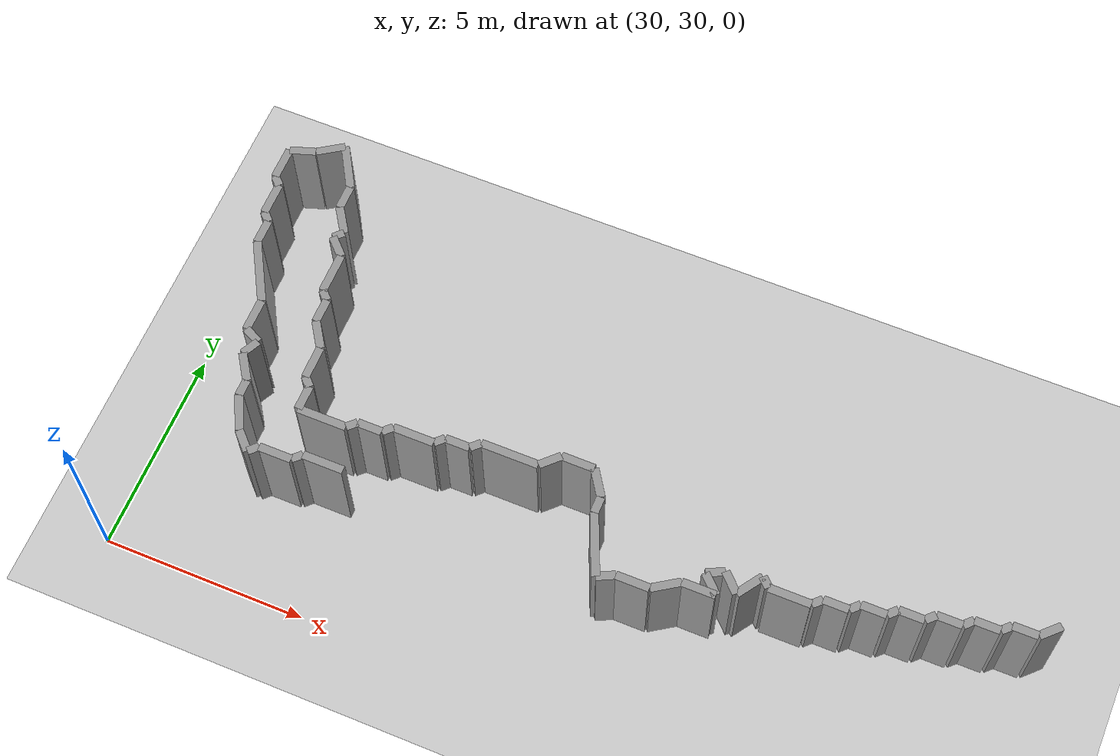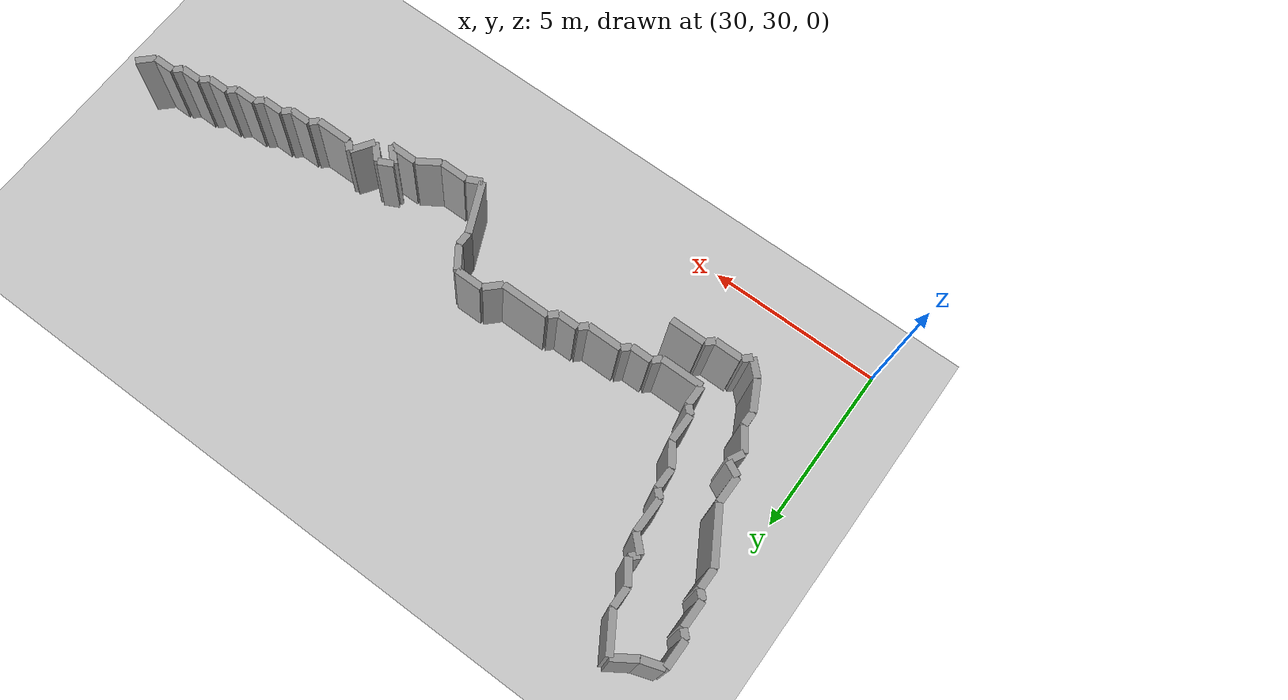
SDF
<sdf version="1.4">
 <world name="1_wall">
  <model name="ground_plane">
   <static>1</static>
   <link name="link">
    <collision name="collision">
     <geometry><plane><normal>0 0 1</normal><size>1000 1000</size></plane></geometry>
     <surface><friction><ode><mu>100</mu><mu2>50</mu2></ode></friction></surface>
    </collision>
    <visual name="visual">
     <cast_shadows>0</cast_shadows>
     <geometry><plane><normal>0 0 1</normal><size>10000 10000</size></plane></geometry>
     <material>
      <script><uri>file://media/materials/scripts/gazebo.material</uri><name>Gazebo/Grey</name></script>
     </material>
    </visual>
    <velocity_decay><linear>0</linear><angular>0</angular></velocity_decay>
   </link>
  </model>
  <model name="Wall_277">
   <static>1</static>
   <link name="Wall_277">
    <collision name="Wall_Collision_277">
     <geometry><box><size>0.565685424949 0.2 2.5</size></box></geometry>
     <pose>0 0 1.25 0 -0 0</pose>
    </collision>
    <visual name="Wall_Visual_277">
     <pose>0 0 1.25 0 -0 0</pose>
     <geometry><box><size>0.565685424949 0.2 2.5</size></box></geometry>
     <material>
      <script><uri>file://media/materials/scripts/gazebo.material</uri><name>Gazebo/Grey</name></script>
     </material>
    </visual>
    <velocity_decay><linear>0</linear><angular>0</angular></velocity_decay>
    <pose>50.8 35.2 0 0 0 -2.35619449019</pose>
   </link>
  </model>
  <model name="Wall_278">
   <static>1</static>
   <link name="Wall_278">
    <collision name="Wall_Collision_278">
     <geometry><box><size>0.6 0.2 2.5</size></box></geometry>
     <pose>0 0 1.25 0 -0 0</pose>
    </collision>
    <visual name="Wall_Visual_278">
     <pose>0 0 1.25 0 -0 0</pose>
     <geometry><box><size>0.6 0.2 2.5</size></box></geometry>
     <material>
      <script><uri>file://media/materials/scripts/gazebo.material</uri><name>Gazebo/Grey</name></script>
     </material>
    </visual>
    <velocity_decay><linear>0</linear><angular>0</angular></velocity_decay>
    <pose>50.3 35.0 0 0 0 3.14159265359</pose>
   </link>
  </model>
  <model name="Wall_279">
   <static>1</static>
   <link name="Wall_279">
    <collision name="Wall_Collision_279">
     <geometry><box><size>0.282842712475 0.2 2.5</size></box></geometry>
     <pose>0 0 1.25 0 -0 0</pose>
    </collision>
    <visual name="Wall_Visual_279">
     <pose>0 0 1.25 0 -0 0</pose>
     <geometry><box><size>0.282842712475 0.2 2.5</size></box></geometry>
     <material>
      <script><uri>file://media/materials/scripts/gazebo.material</uri><name>Gazebo/Grey</name></script>
     </material>
    </visual>
    <velocity_decay><linear>0</linear><angular>0</angular></velocity_decay>
    <pose>49.9 34.9 0 0 0 -2.35619449019</pose>
   </link>
  </model>
  <model name="Wall_280">
   <static>1</static>
   <link name="Wall_280">
    <collision name="Wall_Collision_280">
     <geometry><box><size>0.6 0.2 2.5</size></box></geometry>
     <pose>0 0 1.25 0 -0 0</pose>
    </collision>
    <visual name="Wall_Visual_280">
     <pose>0 0 1.25 0 -0 0</pose>
     <geometry><box><size>0.6 0.2 2.5</size></box></geometry>
     <material>
      <script><uri>file://media/materials/scripts/gazebo.material</uri><name>Gazebo/Grey</name></script>
     </material>
    </visual>
    <velocity_decay><linear>0</linear><angular>0</angular></velocity_decay>
    <pose>49.5 34.8 0 0 0 3.14159265359</pose>
   </link>
  </model>
  <model name="Wall_281">
   <static>1</static>
   <link name="Wall_281">
    <collision name="Wall_Collision_281">
     <geometry><box><size>0.282842712475 0.2 2.5</size></box></geometry>
     <pose>0 0 1.25 0 -0 0</pose>
    </collision>
    <visual name="Wall_Visual_281">
     <pose>0 0 1.25 0 -0 0</pose>
     <geometry><box><size>0.282842712475 0.2 2.5</size></box></geometry>
     <material>
      <script><uri>file://media/materials/scripts/gazebo.material</uri><name>Gazebo/Grey</name></script>
     </material>
    </visual>
    <velocity_decay><linear>0</linear><angular>0</angular></velocity_decay>
    <pose>49.1 34.7 0 0 0 -2.35619449019</pose>
   </link>
  </model>
  <model name="Wall_282">
   <static>1</static>
   <link name="Wall_282">
    <collision name="Wall_Collision_282">
     <geometry><box><size>0.6 0.2 2.5</size></box></geometry>
     <pose>0 0 1.25 0 -0 0</pose>
    </collision>
    <visual name="Wall_Visual_282">
     <pose>0 0 1.25 0 -0 0</pose>
     <geometry><box><size>0.6 0.2 2.5</size></box></geometry>
     <material>
      <script><uri>file://media/materials/scripts/gazebo.material</uri><name>Gazebo/Grey</name></script>
     </material>
    </visual>
    <velocity_decay><linear>0</linear><angular>0</angular></velocity_decay>
    <pose>48.7 34.6 0 0 0 3.14159265359</pose>
   </link>
  </model>
  <model name="Wall_283">
   <static>1</static>
   <link name="Wall_283">
    <collision name="Wall_Collision_283">
     <geometry><box><size>0.282842712475 0.2 2.5</size></box></geometry>
     <pose>0 0 1.25 0 -0 0</pose>
    </collision>
    <visual name="Wall_Visual_283">
     <pose>0 0 1.25 0 -0 0</pose>
     <geometry><box><size>0.282842712475 0.2 2.5</size></box></geometry>
     <material>
      <script><uri>file://media/materials/scripts/gazebo.material</uri><name>Gazebo/Grey</name></script>
     </material>
    </visual>
    <velocity_decay><linear>0</linear><angular>0</angular></velocity_decay>
    <pose>48.3 34.5 0 0 0 -2.35619449019</pose>
   </link>
  </model>
  <model name="Wall_284">
   <static>1</static>
   <link name="Wall_284">
    <collision name="Wall_Collision_284">
     <geometry><box><size>0.6 0.2 2.5</size></box></geometry>
     <pose>0 0 1.25 0 -0 0</pose>
    </collision>
    <visual name="Wall_Visual_284">
     <pose>0 0 1.25 0 -0 0</pose>
     <geometry><box><size>0.6 0.2 2.5</size></box></geometry>
     <material>
      <script><uri>file://media/materials/scripts/gazebo.material</uri><name>Gazebo/Grey</name></script>
     </material>
    </visual>
    <velocity_decay><linear>0</linear><angular>0</angular></velocity_decay>
    <pose>47.9 34.4 0 0 0 3.14159265359</pose>
   </link>
  </model>
  <model name="Wall_285">
   <static>1</static>
   <link name="Wall_285">
    <collision name="Wall_Collision_285">
     <geometry><box><size>0.282842712475 0.2 2.5</size></box></geometry>
     <pose>0 0 1.25 0 -0 0</pose>
    </collision>
    <visual name="Wall_Visual_285">
     <pose>0 0 1.25 0 -0 0</pose>
     <geometry><box><size>0.282842712475 0.2 2.5</size></box></geometry>
     <material>
      <script><uri>file://media/materials/scripts/gazebo.material</uri><name>Gazebo/Grey</name></script>
     </material>
    </visual>
    <velocity_decay><linear>0</linear><angular>0</angular></velocity_decay>
    <pose>47.5 34.3 0 0 0 -2.35619449019</pose>
   </link>
  </model>
  <model name="Wall_286">
   <static>1</static>
   <link name="Wall_286">
    <collision name="Wall_Collision_286">
     <geometry><box><size>0.6 0.2 2.5</size></box></geometry>
     <pose>0 0 1.25 0 -0 0</pose>
    </collision>
    <visual name="Wall_Visual_286">
     <pose>0 0 1.25 0 -0 0</pose>
     <geometry><box><size>0.6 0.2 2.5</size></box></geometry>
     <material>
      <script><uri>file://media/materials/scripts/gazebo.material</uri><name>Gazebo/Grey</name></script>
     </material>
    </visual>
    <velocity_decay><linear>0</linear><angular>0</angular></velocity_decay>
    <pose>47.1 34.2 0 0 0 3.14159265359</pose>
   </link>
  </model>
  <model name="Wall_287">
   <static>1</static>
   <link name="Wall_287">
    <collision name="Wall_Collision_287">
     <geometry><box><size>0.282842712475 0.2 2.5</size></box></geometry>
     <pose>0 0 1.25 0 -0 0</pose>
    </collision>
    <visual name="Wall_Visual_287">
     <pose>0 0 1.25 0 -0 0</pose>
     <geometry><box><size>0.282842712475 0.2 2.5</size></box></geometry>
     <material>
      <script><uri>file://media/materials/scripts/gazebo.material</uri><name>Gazebo/Grey</name></script>
     </material>
    </visual>
    <velocity_decay><linear>0</linear><angular>0</angular></velocity_decay>
    <pose>46.7 34.1 0 0 0 -2.35619449019</pose>
   </link>
  </model>
  <model name="Wall_288">
   <static>1</static>
   <link name="Wall_288">
    <collision name="Wall_Collision_288">
     <geometry><box><size>0.6 0.2 2.5</size></box></geometry>
     <pose>0 0 1.25 0 -0 0</pose>
    </collision>
    <visual name="Wall_Visual_288">
     <pose>0 0 1.25 0 -0 0</pose>
     <geometry><box><size>0.6 0.2 2.5</size></box></geometry>
     <material>
      <script><uri>file://media/materials/scripts/gazebo.material</uri><name>Gazebo/Grey</name></script>
     </material>
    </visual>
    <velocity_decay><linear>0</linear><angular>0</angular></velocity_decay>
    <pose>46.3 34.0 0 0 0 3.14159265359</pose>
   </link>
  </model>
  <model name="Wall_289">
   <static>1</static>
   <link name="Wall_289">
    <collision name="Wall_Collision_289">
     <geometry><box><size>0.282842712475 0.2 2.5</size></box></geometry>
     <pose>0 0 1.25 0 -0 0</pose>
    </collision>
    <visual name="Wall_Visual_289">
     <pose>0 0 1.25 0 -0 0</pose>
     <geometry><box><size>0.282842712475 0.2 2.5</size></box></geometry>
     <material>
      <script><uri>file://media/materials/scripts/gazebo.material</uri><name>Gazebo/Grey</name></script>
     </material>
    </visual>
    <velocity_decay><linear>0</linear><angular>0</angular></velocity_decay>
    <pose>45.9 33.9 0 0 0 -2.35619449019</pose>
   </link>
  </model>
  <model name="Wall_290">
   <static>1</static>
   <link name="Wall_290">
    <collision name="Wall_Collision_290">
     <geometry><box><size>1.0 0.2 2.5</size></box></geometry>
     <pose>0 0 1.25 0 -0 0</pose>
    </collision>
    <visual name="Wall_Visual_290">
     <pose>0 0 1.25 0 -0 0</pose>
     <geometry><box><size>1.0 0.2 2.5</size></box></geometry>
     <material>
      <script><uri>file://media/materials/scripts/gazebo.material</uri><name>Gazebo/Grey</name></script>
     </material>
    </visual>
    <velocity_decay><linear>0</linear><angular>0</angular></velocity_decay>
    <pose>45.3 33.8 0 0 0 3.14159265359</pose>
   </link>
  </model>
  <model name="Wall_291">
   <static>1</static>
   <link name="Wall_291">
    <collision name="Wall_Collision_291">
     <geometry><box><size>0.282842712475 0.2 2.5</size></box></geometry>
     <pose>0 0 1.25 0 -0 0</pose>
    </collision>
    <visual name="Wall_Visual_291">
     <pose>0 0 1.25 0 -0 0</pose>
     <geometry><box><size>0.282842712475 0.2 2.5</size></box></geometry>
     <material>
      <script><uri>file://media/materials/scripts/gazebo.material</uri><name>Gazebo/Grey</name></script>
     </material>
    </visual>
    <velocity_decay><linear>0</linear><angular>0</angular></velocity_decay>
    <pose>44.7 33.9 0 0 0 2.35619449019</pose>
   </link>
  </model>
  <model name="Wall_292">
   <static>1</static>
   <link name="Wall_292">
    <collision name="Wall_Collision_292">
     <geometry><box><size>0.721110255093 0.2 2.5</size></box></geometry>
     <pose>0 0 1.25 0 -0 0</pose>
    </collision>
    <visual name="Wall_Visual_292">
     <pose>0 0 1.25 0 -0 0</pose>
     <geometry><box><size>0.721110255093 0.2 2.5</size></box></geometry>
     <material>
      <script><uri>file://media/materials/scripts/gazebo.material</uri><name>Gazebo/Grey</name></script>
     </material>
    </visual>
    <velocity_decay><linear>0</linear><angular>0</angular></velocity_decay>
    <pose>44.4 33.7 0 0 0 -2.15879893034</pose>
   </link>
  </model>
  <model name="Wall_293">
   <static>1</static>
   <link name="Wall_293">
    <collision name="Wall_Collision_293">
     <geometry><box><size>0.565685424949 0.2 2.5</size></box></geometry>
     <pose>0 0 1.25 0 -0 0</pose>
    </collision>
    <visual name="Wall_Visual_293">
     <pose>0 0 1.25 0 -0 0</pose>
     <geometry><box><size>0.565685424949 0.2 2.5</size></box></geometry>
     <material>
      <script><uri>file://media/materials/scripts/gazebo.material</uri><name>Gazebo/Grey</name></script>
     </material>
    </visual>
    <velocity_decay><linear>0</linear><angular>0</angular></velocity_decay>
    <pose>44.0 33.6 0 0 0 2.35619449019</pose>
   </link>
  </model>
  <model name="Wall_294">
   <static>1</static>
   <link name="Wall_294">
    <collision name="Wall_Collision_294">
     <geometry><box><size>0.4472135955 0.2 2.5</size></box></geometry>
     <pose>0 0 1.25 0 -0 0</pose>
    </collision>
    <visual name="Wall_Visual_294">
     <pose>0 0 1.25 0 -0 0</pose>
     <geometry><box><size>0.4472135955 0.2 2.5</size></box></geometry>
     <material>
      <script><uri>file://media/materials/scripts/gazebo.material</uri><name>Gazebo/Grey</name></script>
     </material>
    </visual>
    <velocity_decay><linear>0</linear><angular>0</angular></velocity_decay>
    <pose>43.6 33.7 0 0 0 -2.67794504459</pose>
   </link>
  </model>
  <model name="Wall_295">
   <static>1</static>
   <link name="Wall_295">
    <collision name="Wall_Collision_295">
     <geometry><box><size>0.565685424949 0.2 2.5</size></box></geometry>
     <pose>0 0 1.25 0 -0 0</pose>
    </collision>
    <visual name="Wall_Visual_295">
     <pose>0 0 1.25 0 -0 0</pose>
     <geometry><box><size>0.565685424949 0.2 2.5</size></box></geometry>
     <material>
      <script><uri>file://media/materials/scripts/gazebo.material</uri><name>Gazebo/Grey</name></script>
     </material>
    </visual>
    <velocity_decay><linear>0</linear><angular>0</angular></velocity_decay>
    <pose>43.6 33.4 0 0 0 -0.785398163397</pose>
   </link>
  </model>
  <model name="Wall_296">
   <static>1</static>
   <link name="Wall_296">
    <collision name="Wall_Collision_296">
     <geometry><box><size>0.8 0.2 2.5</size></box></geometry>
     <pose>0 0 1.25 0 -0 0</pose>
    </collision>
    <visual name="Wall_Visual_296">
     <pose>0 0 1.25 0 -0 0</pose>
     <geometry><box><size>0.8 0.2 2.5</size></box></geometry>
     <material>
      <script><uri>file://media/materials/scripts/gazebo.material</uri><name>Gazebo/Grey</name></script>
     </material>
    </visual>
    <velocity_decay><linear>0</linear><angular>0</angular></velocity_decay>
    <pose>43.4 33.2 0 0 0 3.14159265359</pose>
   </link>
  </model>
  <model name="Wall_297">
   <static>1</static>
   <link name="Wall_297">
    <collision name="Wall_Collision_297">
     <geometry><box><size>0.721110255093 0.2 2.5</size></box></geometry>
     <pose>0 0 1.25 0 -0 0</pose>
    </collision>
    <visual name="Wall_Visual_297">
     <pose>0 0 1.25 0 -0 0</pose>
     <geometry><box><size>0.721110255093 0.2 2.5</size></box></geometry>
     <material>
      <script><uri>file://media/materials/scripts/gazebo.material</uri><name>Gazebo/Grey</name></script>
     </material>
    </visual>
    <velocity_decay><linear>0</linear><angular>0</angular></velocity_decay>
    <pose>42.7 33.0 0 0 0 -2.55359005004</pose>
   </link>
  </model>
  <model name="Wall_298">
   <static>1</static>
   <link name="Wall_298">
    <collision name="Wall_Collision_298">
     <geometry><box><size>0.8 0.2 2.5</size></box></geometry>
     <pose>0 0 1.25 0 -0 0</pose>
    </collision>
    <visual name="Wall_Visual_298">
     <pose>0 0 1.25 0 -0 0</pose>
     <geometry><box><size>0.8 0.2 2.5</size></box></geometry>
     <material>
      <script><uri>file://media/materials/scripts/gazebo.material</uri><name>Gazebo/Grey</name></script>
     </material>
    </visual>
    <velocity_decay><linear>0</linear><angular>0</angular></velocity_decay>
    <pose>42.0 32.8 0 0 0 3.14159265359</pose>
   </link>
  </model>
  <model name="Wall_299">
   <static>1</static>
   <link name="Wall_299">
    <collision name="Wall_Collision_299">
     <geometry><box><size>0.4472135955 0.2 2.5</size></box></geometry>
     <pose>0 0 1.25 0 -0 0</pose>
    </collision>
    <visual name="Wall_Visual_299">
     <pose>0 0 1.25 0 -0 0</pose>
     <geometry><box><size>0.4472135955 0.2 2.5</size></box></geometry>
     <material>
      <script><uri>file://media/materials/scripts/gazebo.material</uri><name>Gazebo/Grey</name></script>
     </material>
    </visual>
    <velocity_decay><linear>0</linear><angular>0</angular></velocity_decay>
    <pose>41.4 32.7 0 0 0 -2.67794504459</pose>
   </link>
  </model>
  <model name="Wall_300">
   <static>1</static>
   <link name="Wall_300">
    <collision name="Wall_Collision_300">
     <geometry><box><size>1.52315462117 0.2 2.5</size></box></geometry>
     <pose>0 0 1.25 0 -0 0</pose>
    </collision>
    <visual name="Wall_Visual_300">
     <pose>0 0 1.25 0 -0 0</pose>
     <geometry><box><size>1.52315462117 0.2 2.5</size></box></geometry>
     <material>
      <script><uri>file://media/materials/scripts/gazebo.material</uri><name>Gazebo/Grey</name></script>
     </material>
    </visual>
    <velocity_decay><linear>0</linear><angular>0</angular></velocity_decay>
    <pose>40.9 33.3 0 0 0 1.97568811308</pose>
   </link>
  </model>
  <model name="Wall_301">
   <static>1</static>
   <link name="Wall_301">
    <collision name="Wall_Collision_301">
     <geometry><box><size>0.4 0.2 2.5</size></box></geometry>
     <pose>0 0 1.25 0 -0 0</pose>
    </collision>
    <visual name="Wall_Visual_301">
     <pose>0 0 1.25 0 -0 0</pose>
     <geometry><box><size>0.4 0.2 2.5</size></box></geometry>
     <material>
      <script><uri>file://media/materials/scripts/gazebo.material</uri><name>Gazebo/Grey</name></script>
     </material>
    </visual>
    <velocity_decay><linear>0</linear><angular>0</angular></velocity_decay>
    <pose>40.6 34.2 0 0 0 1.57079632679</pose>
   </link>
  </model>
  <model name="Wall_302">
   <static>1</static>
   <link name="Wall_302">
    <collision name="Wall_Collision_302">
     <geometry><box><size>0.721110255093 0.2 2.5</size></box></geometry>
     <pose>0 0 1.25 0 -0 0</pose>
    </collision>
    <visual name="Wall_Visual_302">
     <pose>0 0 1.25 0 -0 0</pose>
     <geometry><box><size>0.721110255093 0.2 2.5</size></box></geometry>
     <material>
      <script><uri>file://media/materials/scripts/gazebo.material</uri><name>Gazebo/Grey</name></script>
     </material>
    </visual>
    <velocity_decay><linear>0</linear><angular>0</angular></velocity_decay>
    <pose>40.4 34.7 0 0 0 2.15879893034</pose>
   </link>
  </model>
  <model name="Wall_303">
   <static>1</static>
   <link name="Wall_303">
    <collision name="Wall_Collision_303">
     <geometry><box><size>0.8 0.2 2.5</size></box></geometry>
     <pose>0 0 1.25 0 -0 0</pose>
    </collision>
    <visual name="Wall_Visual_303">
     <pose>0 0 1.25 0 -0 0</pose>
     <geometry><box><size>0.8 0.2 2.5</size></box></geometry>
     <material>
      <script><uri>file://media/materials/scripts/gazebo.material</uri><name>Gazebo/Grey</name></script>
     </material>
    </visual>
    <velocity_decay><linear>0</linear><angular>0</angular></velocity_decay>
    <pose>39.8 35.0 0 0 0 3.14159265359</pose>
   </link>
  </model>
  <model name="Wall_304">
   <static>1</static>
   <link name="Wall_304">
    <collision name="Wall_Collision_304">
     <geometry><box><size>0.565685424949 0.2 2.5</size></box></geometry>
     <pose>0 0 1.25 0 -0 0</pose>
    </collision>
    <visual name="Wall_Visual_304">
     <pose>0 0 1.25 0 -0 0</pose>
     <geometry><box><size>0.565685424949 0.2 2.5</size></box></geometry>
     <material>
      <script><uri>file://media/materials/scripts/gazebo.material</uri><name>Gazebo/Grey</name></script>
     </material>
    </visual>
    <velocity_decay><linear>0</linear><angular>0</angular></velocity_decay>
    <pose>39.2 34.8 0 0 0 -2.35619449019</pose>
   </link>
  </model>
  <model name="Wall_305">
   <static>1</static>
   <link name="Wall_305">
    <collision name="Wall_Collision_305">
     <geometry><box><size>1.4 0.2 2.5</size></box></geometry>
     <pose>0 0 1.25 0 -0 0</pose>
    </collision>
    <visual name="Wall_Visual_305">
     <pose>0 0 1.25 0 -0 0</pose>
     <geometry><box><size>1.4 0.2 2.5</size></box></geometry>
     <material>
      <script><uri>file://media/materials/scripts/gazebo.material</uri><name>Gazebo/Grey</name></script>
     </material>
    </visual>
    <velocity_decay><linear>0</linear><angular>0</angular></velocity_decay>
    <pose>38.3 34.6 0 0 0 3.14159265359</pose>
   </link>
  </model>
  <model name="Wall_306">
   <static>1</static>
   <link name="Wall_306">
    <collision name="Wall_Collision_306">
     <geometry><box><size>0.282842712475 0.2 2.5</size></box></geometry>
     <pose>0 0 1.25 0 -0 0</pose>
    </collision>
    <visual name="Wall_Visual_306">
     <pose>0 0 1.25 0 -0 0</pose>
     <geometry><box><size>0.282842712475 0.2 2.5</size></box></geometry>
     <material>
      <script><uri>file://media/materials/scripts/gazebo.material</uri><name>Gazebo/Grey</name></script>
     </material>
    </visual>
    <velocity_decay><linear>0</linear><angular>0</angular></velocity_decay>
    <pose>37.5 34.5 0 0 0 -2.35619449019</pose>
   </link>
  </model>
  <model name="Wall_307">
   <static>1</static>
   <link name="Wall_307">
    <collision name="Wall_Collision_307">
     <geometry><box><size>0.6 0.2 2.5</size></box></geometry>
     <pose>0 0 1.25 0 -0 0</pose>
    </collision>
    <visual name="Wall_Visual_307">
     <pose>0 0 1.25 0 -0 0</pose>
     <geometry><box><size>0.6 0.2 2.5</size></box></geometry>
     <material>
      <script><uri>file://media/materials/scripts/gazebo.material</uri><name>Gazebo/Grey</name></script>
     </material>
    </visual>
    <velocity_decay><linear>0</linear><angular>0</angular></velocity_decay>
    <pose>37.1 34.4 0 0 0 3.14159265359</pose>
   </link>
  </model>
  <model name="Wall_308">
   <static>1</static>
   <link name="Wall_308">
    <collision name="Wall_Collision_308">
     <geometry><box><size>0.282842712475 0.2 2.5</size></box></geometry>
     <pose>0 0 1.25 0 -0 0</pose>
    </collision>
    <visual name="Wall_Visual_308">
     <pose>0 0 1.25 0 -0 0</pose>
     <geometry><box><size>0.282842712475 0.2 2.5</size></box></geometry>
     <material>
      <script><uri>file://media/materials/scripts/gazebo.material</uri><name>Gazebo/Grey</name></script>
     </material>
    </visual>
    <velocity_decay><linear>0</linear><angular>0</angular></velocity_decay>
    <pose>36.7 34.3 0 0 0 -2.35619449019</pose>
   </link>
  </model>
  <model name="Wall_309">
   <static>1</static>
   <link name="Wall_309">
    <collision name="Wall_Collision_309">
     <geometry><box><size>1.0 0.2 2.5</size></box></geometry>
     <pose>0 0 1.25 0 -0 0</pose>
    </collision>
    <visual name="Wall_Visual_309">
     <pose>0 0 1.25 0 -0 0</pose>
     <geometry><box><size>1.0 0.2 2.5</size></box></geometry>
     <material>
      <script><uri>file://media/materials/scripts/gazebo.material</uri><name>Gazebo/Grey</name></script>
     </material>
    </visual>
    <velocity_decay><linear>0</linear><angular>0</angular></velocity_decay>
    <pose>36.1 34.2 0 0 0 3.14159265359</pose>
   </link>
  </model>
  <model name="Wall_310">
   <static>1</static>
   <link name="Wall_310">
    <collision name="Wall_Collision_310">
     <geometry><box><size>0.282842712475 0.2 2.5</size></box></geometry>
     <pose>0 0 1.25 0 -0 0</pose>
    </collision>
    <visual name="Wall_Visual_310">
     <pose>0 0 1.25 0 -0 0</pose>
     <geometry><box><size>0.282842712475 0.2 2.5</size></box></geometry>
     <material>
      <script><uri>file://media/materials/scripts/gazebo.material</uri><name>Gazebo/Grey</name></script>
     </material>
    </visual>
    <velocity_decay><linear>0</linear><angular>0</angular></velocity_decay>
    <pose>35.5 34.1 0 0 0 -2.35619449019</pose>
   </link>
  </model>
  <model name="Wall_311">
   <static>1</static>
   <link name="Wall_311">
    <collision name="Wall_Collision_311">
     <geometry><box><size>0.6 0.2 2.5</size></box></geometry>
     <pose>0 0 1.25 0 -0 0</pose>
    </collision>
    <visual name="Wall_Visual_311">
     <pose>0 0 1.25 0 -0 0</pose>
     <geometry><box><size>0.6 0.2 2.5</size></box></geometry>
     <material>
      <script><uri>file://media/materials/scripts/gazebo.material</uri><name>Gazebo/Grey</name></script>
     </material>
    </visual>
    <velocity_decay><linear>0</linear><angular>0</angular></velocity_decay>
    <pose>35.1 34.0 0 0 0 3.14159265359</pose>
   </link>
  </model>
  <model name="Wall_312">
   <static>1</static>
   <link name="Wall_312">
    <collision name="Wall_Collision_312">
     <geometry><box><size>0.282842712475 0.2 2.5</size></box></geometry>
     <pose>0 0 1.25 0 -0 0</pose>
    </collision>
    <visual name="Wall_Visual_312">
     <pose>0 0 1.25 0 -0 0</pose>
     <geometry><box><size>0.282842712475 0.2 2.5</size></box></geometry>
     <material>
      <script><uri>file://media/materials/scripts/gazebo.material</uri><name>Gazebo/Grey</name></script>
     </material>
    </visual>
    <velocity_decay><linear>0</linear><angular>0</angular></velocity_decay>
    <pose>34.7 33.9 0 0 0 -2.35619449019</pose>
   </link>
  </model>
  <model name="Wall_313">
   <static>1</static>
   <link name="Wall_313">
    <collision name="Wall_Collision_313">
     <geometry><box><size>1.2 0.2 2.5</size></box></geometry>
     <pose>0 0 1.25 0 -0 0</pose>
    </collision>
    <visual name="Wall_Visual_313">
     <pose>0 0 1.25 0 -0 0</pose>
     <geometry><box><size>1.2 0.2 2.5</size></box></geometry>
     <material>
      <script><uri>file://media/materials/scripts/gazebo.material</uri><name>Gazebo/Grey</name></script>
     </material>
    </visual>
    <velocity_decay><linear>0</linear><angular>0</angular></velocity_decay>
    <pose>34.0 33.8 0 0 0 3.14159265359</pose>
   </link>
  </model>
  <model name="Wall_314">
   <static>1</static>
   <link name="Wall_314">
    <collision name="Wall_Collision_314">
     <geometry><box><size>0.6 0.2 2.5</size></box></geometry>
     <pose>0 0 1.25 0 -0 0</pose>
    </collision>
    <visual name="Wall_Visual_314">
     <pose>0 0 1.25 0 -0 0</pose>
     <geometry><box><size>0.6 0.2 2.5</size></box></geometry>
     <material>
      <script><uri>file://media/materials/scripts/gazebo.material</uri><name>Gazebo/Grey</name></script>
     </material>
    </visual>
    <velocity_decay><linear>0</linear><angular>0</angular></velocity_decay>
    <pose>33.4 34.1 0 0 0 1.57079632679</pose>
   </link>
  </model>
  <model name="Wall_315">
   <static>1</static>
   <link name="Wall_315">
    <collision name="Wall_Collision_315">
     <geometry><box><size>0.282842712475 0.2 2.5</size></box></geometry>
     <pose>0 0 1.25 0 -0 0</pose>
    </collision>
    <visual name="Wall_Visual_315">
     <pose>0 0 1.25 0 -0 0</pose>
     <geometry><box><size>0.282842712475 0.2 2.5</size></box></geometry>
     <material>
      <script><uri>file://media/materials/scripts/gazebo.material</uri><name>Gazebo/Grey</name></script>
     </material>
    </visual>
    <velocity_decay><linear>0</linear><angular>0</angular></velocity_decay>
    <pose>33.3 34.5 0 0 0 2.35619449019</pose>
   </link>
  </model>
  <model name="Wall_316">
   <static>1</static>
   <link name="Wall_316">
    <collision name="Wall_Collision_316">
     <geometry><box><size>0.8 0.2 2.5</size></box></geometry>
     <pose>0 0 1.25 0 -0 0</pose>
    </collision>
    <visual name="Wall_Visual_316">
     <pose>0 0 1.25 0 -0 0</pose>
     <geometry><box><size>0.8 0.2 2.5</size></box></geometry>
     <material>
      <script><uri>file://media/materials/scripts/gazebo.material</uri><name>Gazebo/Grey</name></script>
     </material>
    </visual>
    <velocity_decay><linear>0</linear><angular>0</angular></velocity_decay>
    <pose>33.2 35.0 0 0 0 1.57079632679</pose>
   </link>
  </model>
  <model name="Wall_317">
   <static>1</static>
   <link name="Wall_317">
    <collision name="Wall_Collision_317">
     <geometry><box><size>0.721110255093 0.2 2.5</size></box></geometry>
     <pose>0 0 1.25 0 -0 0</pose>
    </collision>
    <visual name="Wall_Visual_317">
     <pose>0 0 1.25 0 -0 0</pose>
     <geometry><box><size>0.721110255093 0.2 2.5</size></box></geometry>
     <material>
      <script><uri>file://media/materials/scripts/gazebo.material</uri><name>Gazebo/Grey</name></script>
     </material>
    </visual>
    <velocity_decay><linear>0</linear><angular>0</angular></velocity_decay>
    <pose>33.0 35.7 0 0 0 2.15879893034</pose>
   </link>
  </model>
  <model name="Wall_318">
   <static>1</static>
   <link name="Wall_318">
    <collision name="Wall_Collision_318">
     <geometry><box><size>0.6 0.2 2.5</size></box></geometry>
     <pose>0 0 1.25 0 -0 0</pose>
    </collision>
    <visual name="Wall_Visual_318">
     <pose>0 0 1.25 0 -0 0</pose>
     <geometry><box><size>0.6 0.2 2.5</size></box></geometry>
     <material>
      <script><uri>file://media/materials/scripts/gazebo.material</uri><name>Gazebo/Grey</name></script>
     </material>
    </visual>
    <velocity_decay><linear>0</linear><angular>0</angular></velocity_decay>
    <pose>32.8 36.3 0 0 0 1.57079632679</pose>
   </link>
  </model>
  <model name="Wall_319">
   <static>1</static>
   <link name="Wall_319">
    <collision name="Wall_Collision_319">
     <geometry><box><size>0.282842712475 0.2 2.5</size></box></geometry>
     <pose>0 0 1.25 0 -0 0</pose>
    </collision>
    <visual name="Wall_Visual_319">
     <pose>0 0 1.25 0 -0 0</pose>
     <geometry><box><size>0.282842712475 0.2 2.5</size></box></geometry>
     <material>
      <script><uri>file://media/materials/scripts/gazebo.material</uri><name>Gazebo/Grey</name></script>
     </material>
    </visual>
    <velocity_decay><linear>0</linear><angular>0</angular></velocity_decay>
    <pose>32.7 36.7 0 0 0 2.35619449019</pose>
   </link>
  </model>
  <model name="Wall_320">
   <static>1</static>
   <link name="Wall_320">
    <collision name="Wall_Collision_320">
     <geometry><box><size>1.0 0.2 2.5</size></box></geometry>
     <pose>0 0 1.25 0 -0 0</pose>
    </collision>
    <visual name="Wall_Visual_320">
     <pose>0 0 1.25 0 -0 0</pose>
     <geometry><box><size>1.0 0.2 2.5</size></box></geometry>
     <material>
      <script><uri>file://media/materials/scripts/gazebo.material</uri><name>Gazebo/Grey</name></script>
     </material>
    </visual>
    <velocity_decay><linear>0</linear><angular>0</angular></velocity_decay>
    <pose>32.6 37.3 0 0 0 1.57079632679</pose>
   </link>
  </model>
  <model name="Wall_321">
   <static>1</static>
   <link name="Wall_321">
    <collision name="Wall_Collision_321">
     <geometry><box><size>0.565685424949 0.2 2.5</size></box></geometry>
     <pose>0 0 1.25 0 -0 0</pose>
    </collision>
    <visual name="Wall_Visual_321">
     <pose>0 0 1.25 0 -0 0</pose>
     <geometry><box><size>0.565685424949 0.2 2.5</size></box></geometry>
     <material>
      <script><uri>file://media/materials/scripts/gazebo.material</uri><name>Gazebo/Grey</name></script>
     </material>
    </visual>
    <velocity_decay><linear>0</linear><angular>0</angular></velocity_decay>
    <pose>32.4 38.0 0 0 0 2.35619449019</pose>
   </link>
  </model>
  <model name="Wall_322">
   <static>1</static>
   <link name="Wall_322">
    <collision name="Wall_Collision_322">
     <geometry><box><size>0.282842712475 0.2 2.5</size></box></geometry>
     <pose>0 0 1.25 0 -0 0</pose>
    </collision>
    <visual name="Wall_Visual_322">
     <pose>0 0 1.25 0 -0 0</pose>
     <geometry><box><size>0.282842712475 0.2 2.5</size></box></geometry>
     <material>
      <script><uri>file://media/materials/scripts/gazebo.material</uri><name>Gazebo/Grey</name></script>
     </material>
    </visual>
    <velocity_decay><linear>0</linear><angular>0</angular></velocity_decay>
    <pose>32.3 38.3 0 0 0 0.785398163397</pose>
   </link>
  </model>
  <model name="Wall_323">
   <static>1</static>
   <link name="Wall_323">
    <collision name="Wall_Collision_323">
     <geometry><box><size>0.721110255093 0.2 2.5</size></box></geometry>
     <pose>0 0 1.25 0 -0 0</pose>
    </collision>
    <visual name="Wall_Visual_323">
     <pose>0 0 1.25 0 -0 0</pose>
     <geometry><box><size>0.721110255093 0.2 2.5</size></box></geometry>
     <material>
      <script><uri>file://media/materials/scripts/gazebo.material</uri><name>Gazebo/Grey</name></script>
     </material>
    </visual>
    <velocity_decay><linear>0</linear><angular>0</angular></velocity_decay>
    <pose>32.2 38.7 0 0 0 2.15879893034</pose>
   </link>
  </model>
  <model name="Wall_324">
   <static>1</static>
   <link name="Wall_324">
    <collision name="Wall_Collision_324">
     <geometry><box><size>0.6 0.2 2.5</size></box></geometry>
     <pose>0 0 1.25 0 -0 0</pose>
    </collision>
    <visual name="Wall_Visual_324">
     <pose>0 0 1.25 0 -0 0</pose>
     <geometry><box><size>0.6 0.2 2.5</size></box></geometry>
     <material>
      <script><uri>file://media/materials/scripts/gazebo.material</uri><name>Gazebo/Grey</name></script>
     </material>
    </visual>
    <velocity_decay><linear>0</linear><angular>0</angular></velocity_decay>
    <pose>32.0 39.3 0 0 0 1.57079632679</pose>
   </link>
  </model>
  <model name="Wall_325">
   <static>1</static>
   <link name="Wall_325">
    <collision name="Wall_Collision_325">
     <geometry><box><size>1.16619037897 0.2 2.5</size></box></geometry>
     <pose>0 0 1.25 0 -0 0</pose>
    </collision>
    <visual name="Wall_Visual_325">
     <pose>0 0 1.25 0 -0 0</pose>
     <geometry><box><size>1.16619037897 0.2 2.5</size></box></geometry>
     <material>
      <script><uri>file://media/materials/scripts/gazebo.material</uri><name>Gazebo/Grey</name></script>
     </material>
    </visual>
    <velocity_decay><linear>0</linear><angular>0</angular></velocity_decay>
    <pose>31.7 40.1 0 0 0 2.11121582707</pose>
   </link>
  </model>
  <model name="Wall_326">
   <static>1</static>
   <link name="Wall_326">
    <collision name="Wall_Collision_326">
     <geometry><box><size>0.721110255093 0.2 2.5</size></box></geometry>
     <pose>0 0 1.25 0 -0 0</pose>
    </collision>
    <visual name="Wall_Visual_326">
     <pose>0 0 1.25 0 -0 0</pose>
     <geometry><box><size>0.721110255093 0.2 2.5</size></box></geometry>
     <material>
      <script><uri>file://media/materials/scripts/gazebo.material</uri><name>Gazebo/Grey</name></script>
     </material>
    </visual>
    <velocity_decay><linear>0</linear><angular>0</angular></velocity_decay>
    <pose>31.1 40.4 0 0 0 -2.55359005004</pose>
   </link>
  </model>
  <model name="Wall_327">
   <static>1</static>
   <link name="Wall_327">
    <collision name="Wall_Collision_327">
     <geometry><box><size>0.632455532034 0.2 2.5</size></box></geometry>
     <pose>0 0 1.25 0 -0 0</pose>
    </collision>
    <visual name="Wall_Visual_327">
     <pose>0 0 1.25 0 -0 0</pose>
     <geometry><box><size>0.632455532034 0.2 2.5</size></box></geometry>
     <material>
      <script><uri>file://media/materials/scripts/gazebo.material</uri><name>Gazebo/Grey</name></script>
     </material>
    </visual>
    <velocity_decay><linear>0</linear><angular>0</angular></velocity_decay>
    <pose>30.5 40.1 0 0 0 -2.81984209919</pose>
   </link>
  </model>
  <model name="Wall_328">
   <static>1</static>
   <link name="Wall_328">
    <collision name="Wall_Collision_328">
     <geometry><box><size>0.8 0.2 2.5</size></box></geometry>
     <pose>0 0 1.25 0 -0 0</pose>
    </collision>
    <visual name="Wall_Visual_328">
     <pose>0 0 1.25 0 -0 0</pose>
     <geometry><box><size>0.8 0.2 2.5</size></box></geometry>
     <material>
      <script><uri>file://media/materials/scripts/gazebo.material</uri><name>Gazebo/Grey</name></script>
     </material>
    </visual>
    <velocity_decay><linear>0</linear><angular>0</angular></velocity_decay>
    <pose>30.2 39.6 0 0 0 -1.57079632679</pose>
   </link>
  </model>
  <model name="Wall_329">
   <static>1</static>
   <link name="Wall_329">
    <collision name="Wall_Collision_329">
     <geometry><box><size>0.282842712475 0.2 2.5</size></box></geometry>
     <pose>0 0 1.25 0 -0 0</pose>
    </collision>
    <visual name="Wall_Visual_329">
     <pose>0 0 1.25 0 -0 0</pose>
     <geometry><box><size>0.282842712475 0.2 2.5</size></box></geometry>
     <material>
      <script><uri>file://media/materials/scripts/gazebo.material</uri><name>Gazebo/Grey</name></script>
     </material>
    </visual>
    <velocity_decay><linear>0</linear><angular>0</angular></velocity_decay>
    <pose>30.3 39.1 0 0 0 -0.785398163397</pose>
   </link>
  </model>
  <model name="Wall_330">
   <static>1</static>
   <link name="Wall_330">
    <collision name="Wall_Collision_330">
     <geometry><box><size>0.8 0.2 2.5</size></box></geometry>
     <pose>0 0 1.25 0 -0 0</pose>
    </collision>
    <visual name="Wall_Visual_330">
     <pose>0 0 1.25 0 -0 0</pose>
     <geometry><box><size>0.8 0.2 2.5</size></box></geometry>
     <material>
      <script><uri>file://media/materials/scripts/gazebo.material</uri><name>Gazebo/Grey</name></script>
     </material>
    </visual>
    <velocity_decay><linear>0</linear><angular>0</angular></velocity_decay>
    <pose>30.4 38.6 0 0 0 -1.57079632679</pose>
   </link>
  </model>
  <model name="Wall_331">
   <static>1</static>
   <link name="Wall_331">
    <collision name="Wall_Collision_331">
     <geometry><box><size>0.282842712475 0.2 2.5</size></box></geometry>
     <pose>0 0 1.25 0 -0 0</pose>
    </collision>
    <visual name="Wall_Visual_331">
     <pose>0 0 1.25 0 -0 0</pose>
     <geometry><box><size>0.282842712475 0.2 2.5</size></box></geometry>
     <material>
      <script><uri>file://media/materials/scripts/gazebo.material</uri><name>Gazebo/Grey</name></script>
     </material>
    </visual>
    <velocity_decay><linear>0</linear><angular>0</angular></velocity_decay>
    <pose>30.5 38.1 0 0 0 -0.785398163397</pose>
   </link>
  </model>
  <model name="Wall_332">
   <static>1</static>
   <link name="Wall_332">
    <collision name="Wall_Collision_332">
     <geometry><box><size>0.6 0.2 2.5</size></box></geometry>
     <pose>0 0 1.25 0 -0 0</pose>
    </collision>
    <visual name="Wall_Visual_332">
     <pose>0 0 1.25 0 -0 0</pose>
     <geometry><box><size>0.6 0.2 2.5</size></box></geometry>
     <material>
      <script><uri>file://media/materials/scripts/gazebo.material</uri><name>Gazebo/Grey</name></script>
     </material>
    </visual>
    <velocity_decay><linear>0</linear><angular>0</angular></velocity_decay>
    <pose>30.6 37.7 0 0 0 -1.57079632679</pose>
   </link>
  </model>
  <model name="Wall_333">
   <static>1</static>
   <link name="Wall_333">
    <collision name="Wall_Collision_333">
     <geometry><box><size>1.61245154966 0.2 2.5</size></box></geometry>
     <pose>0 0 1.25 0 -0 0</pose>
    </collision>
    <visual name="Wall_Visual_333">
     <pose>0 0 1.25 0 -0 0</pose>
     <geometry><box><size>1.61245154966 0.2 2.5</size></box></geometry>
     <material>
      <script><uri>file://media/materials/scripts/gazebo.material</uri><name>Gazebo/Grey</name></script>
     </material>
    </visual>
    <velocity_decay><linear>0</linear><angular>0</angular></velocity_decay>
    <pose>31.0 36.7 0 0 0 -1.05165021255</pose>
   </link>
  </model>
  <model name="Wall_334">
   <static>1</static>
   <link name="Wall_334">
    <collision name="Wall_Collision_334">
     <geometry><box><size>0.8 0.2 2.5</size></box></geometry>
     <pose>0 0 1.25 0 -0 0</pose>
    </collision>
    <visual name="Wall_Visual_334">
     <pose>0 0 1.25 0 -0 0</pose>
     <geometry><box><size>0.8 0.2 2.5</size></box></geometry>
     <material>
      <script><uri>file://media/materials/scripts/gazebo.material</uri><name>Gazebo/Grey</name></script>
     </material>
    </visual>
    <velocity_decay><linear>0</linear><angular>0</angular></velocity_decay>
    <pose>31.4 35.6 0 0 0 -1.57079632679</pose>
   </link>
  </model>
  <model name="Wall_335">
   <static>1</static>
   <link name="Wall_335">
    <collision name="Wall_Collision_335">
     <geometry><box><size>0.4472135955 0.2 2.5</size></box></geometry>
     <pose>0 0 1.25 0 -0 0</pose>
    </collision>
    <visual name="Wall_Visual_335">
     <pose>0 0 1.25 0 -0 0</pose>
     <geometry><box><size>0.4472135955 0.2 2.5</size></box></geometry>
     <material>
      <script><uri>file://media/materials/scripts/gazebo.material</uri><name>Gazebo/Grey</name></script>
     </material>
    </visual>
    <velocity_decay><linear>0</linear><angular>0</angular></velocity_decay>
    <pose>31.6 35.1 0 0 0 -0.463647609001</pose>
   </link>
  </model>
  <model name="Wall_336">
   <static>1</static>
   <link name="Wall_336">
    <collision name="Wall_Collision_336">
     <geometry><box><size>0.4472135955 0.2 2.5</size></box></geometry>
     <pose>0 0 1.25 0 -0 0</pose>
    </collision>
    <visual name="Wall_Visual_336">
     <pose>0 0 1.25 0 -0 0</pose>
     <geometry><box><size>0.4472135955 0.2 2.5</size></box></geometry>
     <material>
      <script><uri>file://media/materials/scripts/gazebo.material</uri><name>Gazebo/Grey</name></script>
     </material>
    </visual>
    <velocity_decay><linear>0</linear><angular>0</angular></velocity_decay>
    <pose>31.7 34.8 0 0 0 -2.0344439358</pose>
   </link>
  </model>
  <model name="Wall_337">
   <static>1</static>
   <link name="Wall_337">
    <collision name="Wall_Collision_337">
     <geometry><box><size>0.721110255093 0.2 2.5</size></box></geometry>
     <pose>0 0 1.25 0 -0 0</pose>
    </collision>
    <visual name="Wall_Visual_337">
     <pose>0 0 1.25 0 -0 0</pose>
     <geometry><box><size>0.721110255093 0.2 2.5</size></box></geometry>
     <material>
      <script><uri>file://media/materials/scripts/gazebo.material</uri><name>Gazebo/Grey</name></script>
     </material>
    </visual>
    <velocity_decay><linear>0</linear><angular>0</angular></velocity_decay>
    <pose>31.8 34.3 0 0 0 -0.982793723247</pose>
   </link>
  </model>
  <model name="Wall_338">
   <static>1</static>
   <link name="Wall_338">
    <collision name="Wall_Collision_338">
     <geometry><box><size>0.4 0.2 2.5</size></box></geometry>
     <pose>0 0 1.25 0 -0 0</pose>
    </collision>
    <visual name="Wall_Visual_338">
     <pose>0 0 1.25 0 -0 0</pose>
     <geometry><box><size>0.4 0.2 2.5</size></box></geometry>
     <material>
      <script><uri>file://media/materials/scripts/gazebo.material</uri><name>Gazebo/Grey</name></script>
     </material>
    </visual>
    <velocity_decay><linear>0</linear><angular>0</angular></velocity_decay>
    <pose>32.0 33.8 0 0 0 -1.57079632679</pose>
   </link>
  </model>
  <model name="Wall_339">
   <static>1</static>
   <link name="Wall_339">
    <collision name="Wall_Collision_339">
     <geometry><box><size>0.894427191 0.2 2.5</size></box></geometry>
     <pose>0 0 1.25 0 -0 0</pose>
    </collision>
    <visual name="Wall_Visual_339">
     <pose>0 0 1.25 0 -0 0</pose>
     <geometry><box><size>0.894427191 0.2 2.5</size></box></geometry>
     <material>
      <script><uri>file://media/materials/scripts/gazebo.material</uri><name>Gazebo/Grey</name></script>
     </material>
    </visual>
    <velocity_decay><linear>0</linear><angular>0</angular></velocity_decay>
    <pose>32.2 33.2 0 0 0 -1.10714871779</pose>
   </link>
  </model>
  <model name="Wall_340">
   <static>1</static>
   <link name="Wall_340">
    <collision name="Wall_Collision_340">
     <geometry><box><size>0.565685424949 0.2 2.5</size></box></geometry>
     <pose>0 0 1.25 0 -0 0</pose>
    </collision>
    <visual name="Wall_Visual_340">
     <pose>0 0 1.25 0 -0 0</pose>
     <geometry><box><size>0.565685424949 0.2 2.5</size></box></geometry>
     <material>
      <script><uri>file://media/materials/scripts/gazebo.material</uri><name>Gazebo/Grey</name></script>
     </material>
    </visual>
    <velocity_decay><linear>0</linear><angular>0</angular></velocity_decay>
    <pose>32.6 32.6 0 0 0 -0.785398163397</pose>
   </link>
  </model>
  <model name="Wall_341">
   <static>1</static>
   <link name="Wall_341">
    <collision name="Wall_Collision_341">
     <geometry><box><size>0.282842712475 0.2 2.5</size></box></geometry>
     <pose>0 0 1.25 0 -0 0</pose>
    </collision>
    <visual name="Wall_Visual_341">
     <pose>0 0 1.25 0 -0 0</pose>
     <geometry><box><size>0.282842712475 0.2 2.5</size></box></geometry>
     <material>
      <script><uri>file://media/materials/scripts/gazebo.material</uri><name>Gazebo/Grey</name></script>
     </material>
    </visual>
    <velocity_decay><linear>0</linear><angular>0</angular></velocity_decay>
    <pose>32.9 32.5 0 0 0 0.785398163397</pose>
   </link>
  </model>
  <model name="Wall_342">
   <static>1</static>
   <link name="Wall_342">
    <collision name="Wall_Collision_342">
     <geometry><box><size>0.8 0.2 2.5</size></box></geometry>
     <pose>0 0 1.25 0 -0 0</pose>
    </collision>
    <visual name="Wall_Visual_342">
     <pose>0 0 1.25 0 -0 0</pose>
     <geometry><box><size>0.8 0.2 2.5</size></box></geometry>
     <material>
      <script><uri>file://media/materials/scripts/gazebo.material</uri><name>Gazebo/Grey</name></script>
     </material>
    </visual>
    <velocity_decay><linear>0</linear><angular>0</angular></velocity_decay>
    <pose>33.4 32.6 0 0 0 0.0</pose>
   </link>
  </model>
  <model name="Wall_343">
   <static>1</static>
   <link name="Wall_343">
    <collision name="Wall_Collision_343">
     <geometry><box><size>0.282842712475 0.2 2.5</size></box></geometry>
     <pose>0 0 1.25 0 -0 0</pose>
    </collision>
    <visual name="Wall_Visual_343">
     <pose>0 0 1.25 0 -0 0</pose>
     <geometry><box><size>0.282842712475 0.2 2.5</size></box></geometry>
     <material>
      <script><uri>file://media/materials/scripts/gazebo.material</uri><name>Gazebo/Grey</name></script>
     </material>
    </visual>
    <velocity_decay><linear>0</linear><angular>0</angular></velocity_decay>
    <pose>33.9 32.7 0 0 0 0.785398163397</pose>
   </link>
  </model>
  <model name="Wall_344">
   <static>1</static>
   <link name="Wall_344">
    <collision name="Wall_Collision_344">
     <geometry><box><size>1.0 0.2 2.5</size></box></geometry>
     <pose>0 0 1.25 0 -0 0</pose>
    </collision>
    <visual name="Wall_Visual_344">
     <pose>0 0 1.25 0 -0 0</pose>
     <geometry><box><size>1.0 0.2 2.5</size></box></geometry>
     <material>
      <script><uri>file://media/materials/scripts/gazebo.material</uri><name>Gazebo/Grey</name></script>
     </material>
    </visual>
    <velocity_decay><linear>0</linear><angular>0</angular></velocity_decay>
    <pose>34.5 32.8 0 0 0 0.0</pose>
   </link>
  </model>
 </world>
</sdf>
